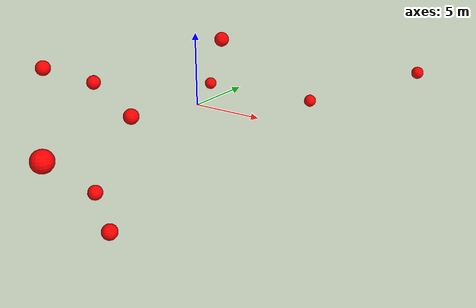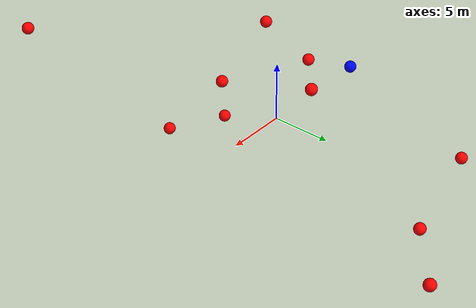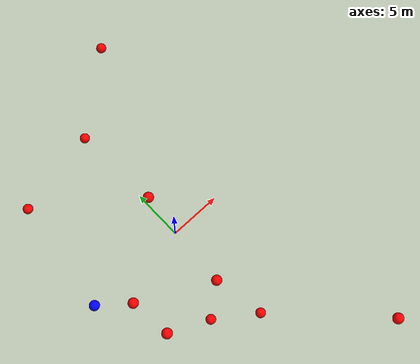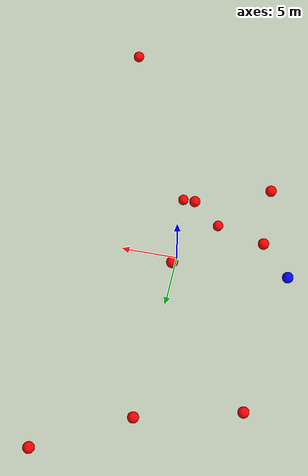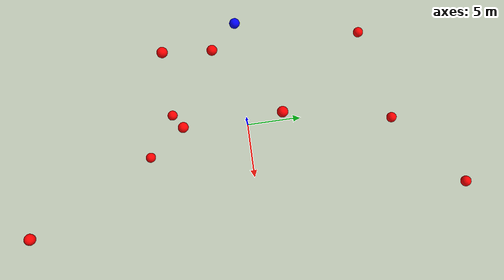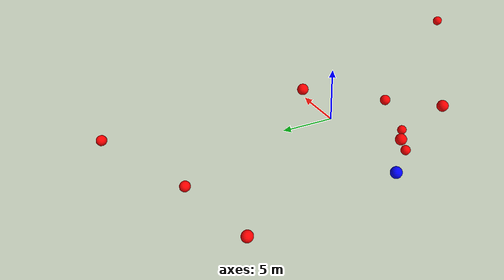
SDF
<?xml version="1.0" ?>
<sdf version="1.8">
    <world name="3d_world">
        <physics name="1ms" type="ode">
            <max_step_size>0.001</max_step_size>
            <real_time_factor>1.0</real_time_factor>
            <real_time_update_rate>1000.0</real_time_update_rate>
        </physics>
        <gravity>0 0 0</gravity>

        <plugin
            filename="gz-sim-physics-system"
            name="gz::sim::v8::systems::Physics">
        </plugin>
        <plugin
            filename="libignition-gazebo-user-commands-system.so"
            name="ignition::gazebo::systems::UserCommands">
        </plugin>
        <plugin
            filename="gz-sim-scene-broadcaster-system"
            name="gz::sim::systems::SceneBroadcaster">
        </plugin>
        <plugin
            filename="gz-sim-sensors-system"
            name="gz::sim::systems::Sensors">
            <render_engine>ogre2</render_engine>
        </plugin>

        <light type="directional" name="sun">
            <cast_shadows>true</cast_shadows>
            <pose>0 0 10 0 0 0</pose>
            <diffuse>0.8 0.8 0.8 1</diffuse>
            <specular>0.2 0.2 0.2 1</specular>
            <attenuation>
                <range>1000</range>
                <constant>0.9</constant>
                <linear>0.01</linear>
                <quadratic>0.001</quadratic>
            </attenuation>
            <direction>-0.5 0.1 -0.9</direction>
        </light>

        <!-- AGENTE -->
        <model name='agente' canonical_link='chassis'>
            <pose relative_to='world'>-10.0 0 0.0 0 0 0</pose>
            <link name='chassis'>
                <pose relative_to='__model__'>0.0 0 0.0 0 0 0</pose>
                <inertial>
                    <mass>1.14395</mass>
                    <inertia>
                        <ixx>0.095329</ixx>
                        <ixy>0</ixy>
                        <ixz>0</ixz>
                        <iyy>0.381317</iyy>
                        <iyz>0</iyz>
                        <izz>0.476646</izz>
                    </inertia>
                </inertial>
                <visual name='visual'>
                    <geometry>
                        <sphere>
                            <radius>0.5</radius>
                        </sphere>
                    </geometry>
                    <material>
                        <ambient>0.0 0.0 1.0 1</ambient>
                        <diffuse>0.0 0.0 1.0 1</diffuse>
                        <specular>0.0 0.0 1.0 1</specular>
                    </material>
                </visual>
                <collision name='collision'>
                    <geometry>
                        <sphere>
                            <radius>0.5</radius>
                        </sphere>
                    </geometry>
                </collision>
                <enable_gravity>false</enable_gravity>
            </link>

            <link name='lidar_link'>
                <pose relative_to='chassis'>0.0 0 0.1 0 0 0</pose>
                <inertial>
                    <mass>0.1</mass>
                    <inertia>
                        <ixx>0.000166667</ixx>
                        <iyy>0.000166667</iyy>
                        <izz>0.000166667</izz>
                    </inertia>
                </inertial>
                <collision name='collision'>
                    <geometry>
                        <cylinder>
                            <radius>0.05</radius>
                            <length>0.1</length>
                        </cylinder>
                    </geometry>
                </collision>
                <visual name='visual'>
                    <geometry>
                        <cylinder>
                            <radius>0.05</radius>
                            <length>0.1</length>
                        </cylinder>
                    </geometry>
                    <material>
                        <ambient>0.0 1.0 0.0 1</ambient>
                        <diffuse>0.0 1.0 0.0 1</diffuse>
                        <specular>0.0 1.0 0.0 1</specular>
                    </material>
                </visual>
                <sensor name="lidar" type="gpu_lidar">
                    <topic>scan</topic>
                    <update_rate>10</update_rate>
                    <lidar>
                        <scan>
                            <horizontal>
                                <samples>5000</samples>
                                <resolution>1</resolution>
                                <min_angle>-3.14159</min_angle>
                                <max_angle>3.14159</max_angle>
                            </horizontal>
                        </scan>
                        <range>
                            <min>0.1</min>
                            <max>10.0</max>
                            <resolution>0.01</resolution>
                        </range>
                    </lidar>
                    <visualize>true</visualize>
                    <always_on>true</always_on>
                    <update_rate>10</update_rate>
                    <pose_frame>lidar</pose_frame>
                </sensor>
                <enable_gravity>false</enable_gravity>
            </link>

            <joint name="lidar_joint" type="fixed">
                <parent>chassis</parent>
                <child>lidar_link</child>
            </joint>

            <plugin
                filename="ignition-gazebo-joint-state-publisher-system"
                name="ignition::gazebo::systems::JointStatePublisher">
            </plugin>
            <plugin
                filename="ignition-gazebo-odometry-publisher-system"
                name="ignition::gazebo::systems::OdometryPublisher">
                <dimensions>3</dimensions>
            </plugin>
            <plugin
                filename="ignition-gazebo-velocity-control-system"
                name="ignition::gazebo::systems::VelocityControl">
                <initial_linear>0.0 0 0</initial_linear>
                <initial_angular>0 0 0.0</initial_angular>
            </plugin>
            <plugin
                filename="libignition-gazebo-pose-publisher-system.so"
                name="ignition::gazebo::systems::PosePublisher">
                <topic>/agente/pose</topic>
                <frame_id>agente</frame_id>
                <update_rate>30</update_rate>
            </plugin>
        </model>

        <!-- OBSTACLE 1 -->
        <model name='obstacle_1' canonical_link='obstacle'>
            <static>false</static>
            <pose relative_to='world'>-7.20 -6.87 3.07 0 0 0</pose>
            <link name='obstacle'>
                <pose relative_to='__model__'>0.0 0 0.0 0 0 0</pose>
                <visual name='visual'>
                    <geometry>
                        <sphere>
                            <radius>0.50</radius>
                        </sphere>
                    </geometry>
                    <material>
                        <ambient>1.0 0.0 0.0 1</ambient>
                        <diffuse>1.0 0.0 0.0 1</diffuse>
                        <specular>1.0 0.0 0.0 1</specular>
                    </material>
                </visual>
                <collision name='collision'>
                    <geometry>
                        <sphere>
                            <radius>0.50</radius>
                        </sphere>
                    </geometry>
                </collision>
                <enable_gravity>false</enable_gravity>
            </link>

            <plugin
                filename="ignition-gazebo-velocity-control-system"
                name="ignition::gazebo::systems::VelocityControl">
                <initial_linear>0.97 1.60 -0.71</initial_linear>
                <initial_angular>0 0 0</initial_angular>
            </plugin>

            <plugin
                filename="ignition-gazebo-odometry-publisher-system"
                name="ignition::gazebo::systems::OdometryPublisher">
                <dimensions>3</dimensions>
            </plugin>
        </model>

        <!-- OBSTACLE 2 -->
        <model name='obstacle_2' canonical_link='obstacle'>
            <static>false</static>
            <pose relative_to='world'>-8.31 12.35 -2.86 0 0 0</pose>
            <link name='obstacle'>
                <pose relative_to='__model__'>0.0 0 0.0 0 0 0</pose>
                <visual name='visual'>
                    <geometry>
                        <sphere>
                            <radius>0.50</radius>
                        </sphere>
                    </geometry>
                    <material>
                        <ambient>1.0 0.0 0.0 1</ambient>
                        <diffuse>1.0 0.0 0.0 1</diffuse>
                        <specular>1.0 0.0 0.0 1</specular>
                    </material>
                </visual>
                <collision name='collision'>
                    <geometry>
                        <sphere>
                            <radius>0.50</radius>
                        </sphere>
                    </geometry>
                </collision>
                <enable_gravity>false</enable_gravity>
            </link>

            <plugin
                filename="ignition-gazebo-velocity-control-system"
                name="ignition::gazebo::systems::VelocityControl">
                <initial_linear>1.35 -1.44 0.33</initial_linear>
                <initial_angular>0 0 0</initial_angular>
            </plugin>

            <plugin
                filename="ignition-gazebo-odometry-publisher-system"
                name="ignition::gazebo::systems::OdometryPublisher">
                <dimensions>3</dimensions>
            </plugin>
        </model>

        <!-- OBSTACLE 3 -->
        <model name='obstacle_3' canonical_link='obstacle'>
            <static>false</static>
            <pose relative_to='world'>0.72 14.46 -3.45 0 0 0</pose>
            <link name='obstacle'>
                <pose relative_to='__model__'>0.0 0 0.0 0 0 0</pose>
                <visual name='visual'>
                    <geometry>
                        <sphere>
                            <radius>0.50</radius>
                        </sphere>
                    </geometry>
                    <material>
                        <ambient>1.0 0.0 0.0 1</ambient>
                        <diffuse>1.0 0.0 0.0 1</diffuse>
                        <specular>1.0 0.0 0.0 1</specular>
                    </material>
                </visual>
                <collision name='collision'>
                    <geometry>
                        <sphere>
                            <radius>0.50</radius>
                        </sphere>
                    </geometry>
                </collision>
                <enable_gravity>false</enable_gravity>
            </link>

            <plugin
                filename="ignition-gazebo-velocity-control-system"
                name="ignition::gazebo::systems::VelocityControl">
                <initial_linear>-0.28 -1.93 0.46</initial_linear>
                <initial_angular>0 0 0</initial_angular>
            </plugin>

            <plugin
                filename="ignition-gazebo-odometry-publisher-system"
                name="ignition::gazebo::systems::OdometryPublisher">
                <dimensions>3</dimensions>
            </plugin>
        </model>

        <!-- OBSTACLE 4 -->
        <model name='obstacle_4' canonical_link='obstacle'>
            <static>false</static>
            <pose relative_to='world'>7.91 -19.63 4.50 0 0 0</pose>
            <link name='obstacle'>
                <pose relative_to='__model__'>0.0 0 0.0 0 0 0</pose>
                <visual name='visual'>
                    <geometry>
                        <sphere>
                            <radius>0.50</radius>
                        </sphere>
                    </geometry>
                    <material>
                        <ambient>1.0 0.0 0.0 1</ambient>
                        <diffuse>1.0 0.0 0.0 1</diffuse>
                        <specular>1.0 0.0 0.0 1</specular>
                    </material>
                </visual>
                <collision name='collision'>
                    <geometry>
                        <sphere>
                            <radius>0.50</radius>
                        </sphere>
                    </geometry>
                </collision>
                <enable_gravity>false</enable_gravity>
            </link>

            <plugin
                filename="ignition-gazebo-velocity-control-system"
                name="ignition::gazebo::systems::VelocityControl">
                <initial_linear>-0.06 1.95 -0.45</initial_linear>
                <initial_angular>0 0 0</initial_angular>
            </plugin>

            <plugin
                filename="ignition-gazebo-odometry-publisher-system"
                name="ignition::gazebo::systems::OdometryPublisher">
                <dimensions>3</dimensions>
            </plugin>
        </model>

        <!-- OBSTACLE 5 -->
        <model name='obstacle_5' canonical_link='obstacle'>
            <static>false</static>
            <pose relative_to='world'>-7.37 -2.45 0.99 0 0 0</pose>
            <link name='obstacle'>
                <pose relative_to='__model__'>0.0 0 0.0 0 0 0</pose>
                <visual name='visual'>
                    <geometry>
                        <sphere>
                            <radius>0.50</radius>
                        </sphere>
                    </geometry>
                    <material>
                        <ambient>1.0 0.0 0.0 1</ambient>
                        <diffuse>1.0 0.0 0.0 1</diffuse>
                        <specular>1.0 0.0 0.0 1</specular>
                    </material>
                </visual>
                <collision name='collision'>
                    <geometry>
                        <sphere>
                            <radius>0.50</radius>
                        </sphere>
                    </geometry>
                </collision>
                <enable_gravity>false</enable_gravity>
            </link>

            <plugin
                filename="ignition-gazebo-velocity-control-system"
                name="ignition::gazebo::systems::VelocityControl">
                <initial_linear>1.89 0.56 -0.23</initial_linear>
                <initial_angular>0 0 0</initial_angular>
            </plugin>

            <plugin
                filename="ignition-gazebo-odometry-publisher-system"
                name="ignition::gazebo::systems::OdometryPublisher">
                <dimensions>3</dimensions>
            </plugin>
        </model>

        <!-- OBSTACLE 6 -->
        <model name='obstacle_6' canonical_link='obstacle'>
            <static>false</static>
            <pose relative_to='world'>8.01 19.96 -1.12 0 0 0</pose>
            <link name='obstacle'>
                <pose relative_to='__model__'>0.0 0 0.0 0 0 0</pose>
                <visual name='visual'>
                    <geometry>
                        <sphere>
                            <radius>0.50</radius>
                        </sphere>
                    </geometry>
                    <material>
                        <ambient>1.0 0.0 0.0 1</ambient>
                        <diffuse>1.0 0.0 0.0 1</diffuse>
                        <specular>1.0 0.0 0.0 1</specular>
                    </material>
                </visual>
                <collision name='collision'>
                    <geometry>
                        <sphere>
                            <radius>0.50</radius>
                        </sphere>
                    </geometry>
                </collision>
                <enable_gravity>false</enable_gravity>
            </link>

            <plugin
                filename="ignition-gazebo-velocity-control-system"
                name="ignition::gazebo::systems::VelocityControl">
                <initial_linear>-0.80 -1.83 0.10</initial_linear>
                <initial_angular>0 0 0</initial_angular>
            </plugin>

            <plugin
                filename="ignition-gazebo-odometry-publisher-system"
                name="ignition::gazebo::systems::OdometryPublisher">
                <dimensions>3</dimensions>
            </plugin>
        </model>

        <!-- OBSTACLE 7 -->
        <model name='obstacle_7' canonical_link='obstacle'>
            <static>false</static>
            <pose relative_to='world'>-0.43 -6.02 0.81 0 0 0</pose>
            <link name='obstacle'>
                <pose relative_to='__model__'>0.0 0 0.0 0 0 0</pose>
                <visual name='visual'>
                    <geometry>
                        <sphere>
                            <radius>0.50</radius>
                        </sphere>
                    </geometry>
                    <material>
                        <ambient>1.0 0.0 0.0 1</ambient>
                        <diffuse>1.0 0.0 0.0 1</diffuse>
                        <specular>1.0 0.0 0.0 1</specular>
                    </material>
                </visual>
                <collision name='collision'>
                    <geometry>
                        <sphere>
                            <radius>0.50</radius>
                        </sphere>
                    </geometry>
                </collision>
                <enable_gravity>false</enable_gravity>
            </link>

            <plugin
                filename="ignition-gazebo-velocity-control-system"
                name="ignition::gazebo::systems::VelocityControl">
                <initial_linear>-0.82 1.81 -0.24</initial_linear>
                <initial_angular>0 0 0</initial_angular>
            </plugin>

            <plugin
                filename="ignition-gazebo-odometry-publisher-system"
                name="ignition::gazebo::systems::OdometryPublisher">
                <dimensions>3</dimensions>
            </plugin>
        </model>

        <!-- OBSTACLE 8 -->
        <model name='obstacle_8' canonical_link='obstacle'>
            <static>false</static>
            <pose relative_to='world'>1.44 -10.30 -4.74 0 0 0</pose>
            <link name='obstacle'>
                <pose relative_to='__model__'>0.0 0 0.0 0 0 0</pose>
                <visual name='visual'>
                    <geometry>
                        <sphere>
                            <radius>0.50</radius>
                        </sphere>
                    </geometry>
                    <material>
                        <ambient>1.0 0.0 0.0 1</ambient>
                        <diffuse>1.0 0.0 0.0 1</diffuse>
                        <specular>1.0 0.0 0.0 1</specular>
                    </material>
                </visual>
                <collision name='collision'>
                    <geometry>
                        <sphere>
                            <radius>0.50</radius>
                        </sphere>
                    </geometry>
                </collision>
                <enable_gravity>false</enable_gravity>
            </link>

            <plugin
                filename="ignition-gazebo-velocity-control-system"
                name="ignition::gazebo::systems::VelocityControl">
                <initial_linear>-0.39 1.78 0.82</initial_linear>
                <initial_angular>0 0 0</initial_angular>
            </plugin>

            <plugin
                filename="ignition-gazebo-odometry-publisher-system"
                name="ignition::gazebo::systems::OdometryPublisher">
                <dimensions>3</dimensions>
            </plugin>
        </model>

        <!-- OBSTACLE 9 -->
        <model name='obstacle_9' canonical_link='obstacle'>
            <static>false</static>
            <pose relative_to='world'>-0.22 3.21 3.94 0 0 0</pose>
            <link name='obstacle'>
                <pose relative_to='__model__'>0.0 0 0.0 0 0 0</pose>
                <visual name='visual'>
                    <geometry>
                        <sphere>
                            <radius>0.50</radius>
                        </sphere>
                    </geometry>
                    <material>
                        <ambient>1.0 0.0 0.0 1</ambient>
                        <diffuse>1.0 0.0 0.0 1</diffuse>
                        <specular>1.0 0.0 0.0 1</specular>
                    </material>
                </visual>
                <collision name='collision'>
                    <geometry>
                        <sphere>
                            <radius>0.50</radius>
                        </sphere>
                    </geometry>
                </collision>
                <enable_gravity>false</enable_gravity>
            </link>

            <plugin
                filename="ignition-gazebo-velocity-control-system"
                name="ignition::gazebo::systems::VelocityControl">
                <initial_linear>-0.20 -0.88 -1.09</initial_linear>
                <initial_angular>0 0 0</initial_angular>
            </plugin>

            <plugin
                filename="ignition-gazebo-odometry-publisher-system"
                name="ignition::gazebo::systems::OdometryPublisher">
                <dimensions>3</dimensions>
            </plugin>
        </model>

        <!-- OBSTACLE 10 -->
        <model name='obstacle_10' canonical_link='obstacle'>
            <static>false</static>
            <pose relative_to='world'>-2.53 -7.55 -4.33 0 0 0</pose>
            <link name='obstacle'>
                <pose relative_to='__model__'>0.0 0 0.0 0 0 0</pose>
                <visual name='visual'>
                    <geometry>
                        <sphere>
                            <radius>0.50</radius>
                        </sphere>
                    </geometry>
                    <material>
                        <ambient>1.0 0.0 0.0 1</ambient>
                        <diffuse>1.0 0.0 0.0 1</diffuse>
                        <specular>1.0 0.0 0.0 1</specular>
                    </material>
                </visual>
                <collision name='collision'>
                    <geometry>
                        <sphere>
                            <radius>0.50</radius>
                        </sphere>
                    </geometry>
                </collision>
                <enable_gravity>false</enable_gravity>
            </link>

            <plugin
                filename="ignition-gazebo-velocity-control-system"
                name="ignition::gazebo::systems::VelocityControl">
                <initial_linear>1.25 1.26 0.72</initial_linear>
                <initial_angular>0 0 0</initial_angular>
            </plugin>

            <plugin
                filename="ignition-gazebo-odometry-publisher-system"
                name="ignition::gazebo::systems::OdometryPublisher">
                <dimensions>3</dimensions>
            </plugin>
        </model>

    </world>
</sdf>
